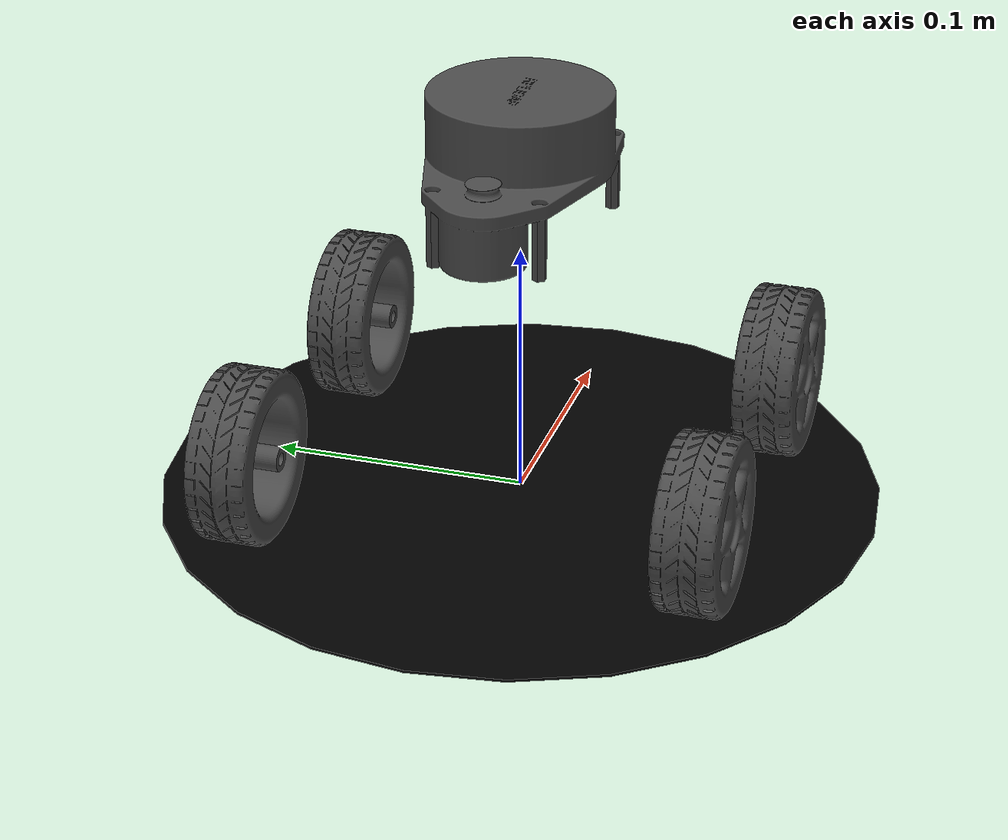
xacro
<?xml version="1.0" encoding="utf-8"?>

<robot name="robot" xmlns:xacro="http://www.ros.org/wiki/xacro">

  <xacro:property name="clearance" value="0.048" />
  <xacro:property name="PI" value="3.14159"/>

  <!-- Matherials -->
  <xacro:include filename="$(find robot_description)/urdf/robot_materials.xacro" />

  <!-- Link base_footprint -->
  <link name="base_footprint">
    <visual>
      <origin xyz="0 0 0" rpy="0 0 0" />
      <geometry>
        <cylinder length="0.001" radius="0.14" />
      </geometry>
      <material name="Clear" />
    </visual>
  </link>

  <!-- Link base_link -->
  <link name="base_link">
    <visual>
      <origin xyz="0 0 0" rpy="0 0 0" />
      <geometry>
        <sphere radius="0.001" />
      </geometry>
    </visual>
  </link>

  <!-- Joint base_footprint base_link -->
  <joint name="base_footprint_to_base_link" type="fixed">
    <origin xyz="0 0 ${clearance}" rpy="0 0 0" />
    <parent link="base_footprint" />
    <child link="base_link" />
  </joint>

  <!-- Link robot_base -->
  <link name="robot_base">
    <inertial>
      <origin xyz="0.0032453 -1.4219E-05 0.008348" rpy="0 0 0" />
      <mass value="3.5" />
      <inertia ixx="0.0093009" ixy="0.0" ixz="0.0" iyy="0.021031" iyz="0.0" izz="0.029655" />
    </inertial>
    <visual>
      <origin xyz="0 0 0" rpy="0 0 0" />
      <geometry>
        <mesh filename="package://robot_description/meshes/Robot_base.STL" scale="0.001 0.001 0.001" />
      </geometry>
      <material name="Base" />
    </visual>
    <collision>
      <origin xyz="0 0 0" rpy="0 0 0" />
      <geometry>
        <mesh filename="package://robot_description/meshes/Robot_base.STL" scale="0.001 0.001 0.001" />
      </geometry>
    </collision>
  </link>

  <!-- Joint robot_base -->
  <joint name="base_link_to_robot_base" type="fixed">
    <origin xyz="0 0 0" rpy="0 0 0" />
    <parent link="base_link" />
    <child link="robot_base" />
  </joint>

  <!-- Link Left_forward_link -->
  <link name="Left_forward_link">
    <inertial>
      <origin xyz="0.00053 0.0 0.0" rpy="0 0 0" />
      <mass value="0.38" />
      <inertia ixx="0.000281" ixy="0.0" ixz="0.0" iyy="0.000159" iyz="0.0" izz="0.000159" />
    </inertial>
    <visual>
      <origin xyz="0 0 0" rpy="0 0 0" />
      <geometry>
        <mesh filename="package://robot_description/meshes/Wheel.STL" scale="0.001 0.001 0.001" />
      </geometry>
      <material name="Wheel" />
    </visual>
    <collision>
      <origin xyz="0 0 0" rpy="0 0 0" />
      <geometry>
        <mesh filename="package://robot_description/meshes/Wheel.STL" scale="0.001 0.001 0.001" />
      </geometry>
    </collision>
  </link>

  <!-- Joint Left_forward_joint -->
  <joint name="Left_forward_joint" type="continuous">
    <origin xyz="0.0634 0.08795 -0.0159" rpy="0 0 1.5708" />
    <parent link="robot_base" />
    <child link="Left_forward_link" />
    <axis xyz="1 0 0" />
  </joint>

  <!-- Link Left_backward_link -->
  <link name="Left_backward_link">
    <inertial>
      <origin xyz="0.00053 0.0 0.0" rpy="0 0 0" />
      <mass value="0.38" />
      <inertia ixx="0.000281" ixy="0.0" ixz="0.0" iyy="0.000159" iyz="0.0" izz="0.000159" />
    </inertial>
    <visual>
      <origin xyz="0 0 0" rpy="0 0 0" />
      <geometry>
        <mesh filename="package://robot_description/meshes/Wheel.STL" scale="0.001 0.001 0.001" />
      </geometry>
      <material name="Wheel" />
    </visual>
    <collision>
      <origin xyz="0 0 0" rpy="0 0 0" />
      <geometry>
        <mesh filename="package://robot_description/meshes/Wheel.STL" scale="0.001 0.001 0.001" />
      </geometry>
    </collision>
  </link>

  <!-- Joint Left_backward_joint -->
  <joint name="Left_backward_joint" type="continuous">
    <origin xyz="-0.0634 0.08795 -0.0159" rpy="0 0 1.5708" />
    <parent link="robot_base" />
    <child link="Left_backward_link" />
    <axis xyz="1 0 0" />
  </joint>

  <!-- Link Right_forward_link -->
  <link name="Right_forward_link">
    <inertial>
      <origin xyz="0.00053 0.0 0.0" rpy="0 0 0" />
      <mass value="0.38" />
      <inertia ixx="0.000281" ixy="0.0" ixz="0.0" iyy="0.000159" iyz="0.0" izz="0.000159" />
    </inertial>
    <visual>
      <origin xyz="0 0 0" rpy="0 0 0" />
      <geometry>
        <mesh filename="package://robot_description/meshes/Wheel.STL" scale="0.001 0.001 0.001" />
      </geometry>
      <material name="Wheel" />
    </visual>
    <collision>
      <origin xyz="0 0 0" rpy="0 0 0" />
      <geometry>
        <mesh filename="package://robot_description/meshes/Wheel.STL" scale="0.001 0.001 0.001" />
      </geometry>
    </collision>
  </link>

  <!-- Joint Right_forward_joint -->
  <joint name="Right_forward_joint" type="continuous">
    <origin xyz="0.0634 -0.08795 -0.0159" rpy="0 0 -1.5707963267949" />
    <parent link="robot_base" />
    <child link="Right_forward_link" />
    <axis xyz="1 0 0" />
  </joint>

  <!-- Link Right_backward_link -->
  <link name="Right_backward_link">
    <inertial>
      <origin xyz="0.00053 0.0 0.0" rpy="0 0 0" />
      <mass value="0.38" />
      <inertia ixx="0.000281" ixy="0.0" ixz="0.0" iyy="0.000159" iyz="0.0" izz="0.000159" />
    </inertial>
    <visual>
      <origin xyz="0 0 0" rpy="0 0 0" />
      <geometry>
        <mesh filename="package://robot_description/meshes/Wheel.STL" scale="0.001 0.001 0.001" />
      </geometry>
      <material name="Wheel" />
    </visual>
    <collision>
      <origin xyz="0 0 0" rpy="0 0 0" />
      <geometry>
        <mesh filename="package://robot_description/meshes/Wheel.STL" scale="0.001 0.001 0.001" />
      </geometry>
    </collision>
  </link>

  <!-- Joint Right_backward_joint -->
  <joint name="Right_backward_joint" type="continuous">
    <origin xyz="-0.0634 -0.08795 -0.0159" rpy="0 0 -1.5708" />
    <parent link="robot_base" />
    <child link="Right_backward_link" />
    <axis xyz="1 0 0" />
  </joint>

  <!-- Link Lidar_Link -->
  <link name="Lidar_Link">
    <inertial>
      <origin xyz="-0.0078 -0.00023 -0.0088" rpy="0 0 0" />
      <mass value="1.0" />
      <inertia ixx="0.000440" ixy="0.0" ixz="-0.0001313" iyy="0.0007248" iyz="0.0" izz="0.0008769" />
    </inertial>
    <visual>
      <origin xyz="0 0 0" rpy="0 0 0" />
      <geometry>
        <mesh filename="package://robot_description/meshes/Lidar.STL" scale="0.001 0.001 0.001" />
      </geometry>
      <material name="Wheel" />
    </visual>
    <collision>
      <origin xyz="0 0 0" rpy="0 0 0" />
      <geometry>
        <mesh filename="package://robot_description/meshes/Lidar.STL" scale="0.001 0.001 0.001" />
      </geometry>
    </collision>
  </link>

  <!-- Joint  -->
  <joint name="Lidar_Joint" type="fixed">
    <origin xyz="0 0 0.1061" rpy="0 0 0" />
    <parent link="robot_base" />
    <child link="Lidar_Link" />
    <axis xyz="0 0 0" />
  </joint>
</robot>

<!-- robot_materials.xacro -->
<robot
	xmlns:xacro="http://www.ros.org/wiki/xacro">
	<material name="Green">
		<color rgba="0.0 1.0 0.0 1.0"/>
	</material>
	<material name="Blue">
		<color rgba="0.0 0.0 1.0 1.0"/>
	</material>
	<material name="Red">
		<color rgba="1.0 0.0 0.0 1.0"/>
	</material>
	<material name="White">
		<color rgba="1.0 1.0 1.0 1.0"/>
	</material>
	<material name="Yellow">
		<color rgba="1.0 1.0 0.0 1.0"/>
	</material>
	<material name="Black">
		<color rgba="0.3 0.3 0.3 1.0"/>
	</material>
	<material name="Orange">
		<color rgba="1.0 0.64 0.0 1.0"/>
	</material>
	<material name="Clear">
		<color rgba="0.0 0.0 0.0 0.0"/>
	</material>

	<material name="Base">
		<color rgba="1.0 0.89 0.803 1"/>
	</material>
	<material name="Wheel">
		<color rgba="0.3 0.3 0.3 1.0"/>
	</material>
</robot>
